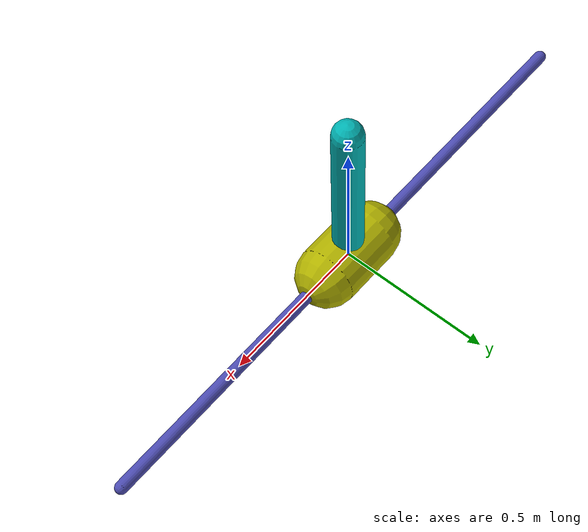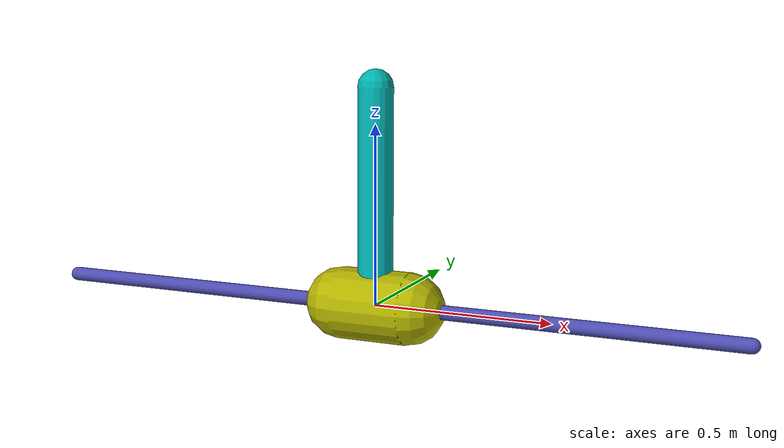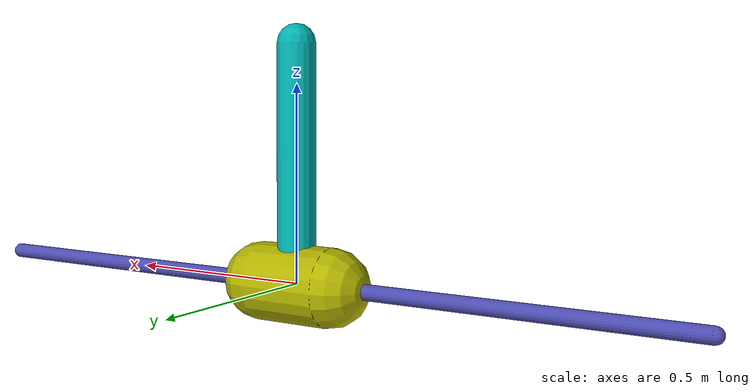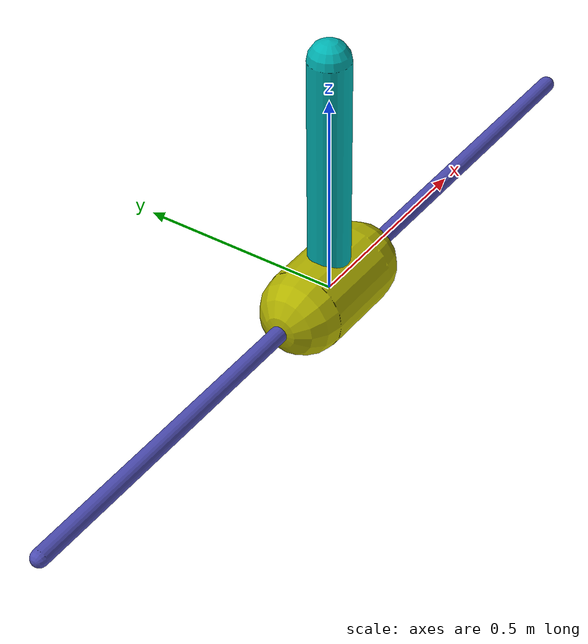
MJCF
<mujoco model="inverted pendulum">
	<compiler inertiafromgeom="true"/>
	<default>
		<joint armature="0" damping="1" limited="true"/>
		<geom contype="0" friction="1 0.1 0.1" rgba="0.7 0.7 0 1"/>
		<tendon/>
		<motor ctrlrange="-3 3"/>
	</default>
	<option gravity="0 0 -9.81" integrator="RK4" timestep="0.02"/>
	<size nstack="3000"/>
	<worldbody>
		<!--geom name="ground" type="plane" pos="0 0 0" /-->
		<geom name="rail" pos="0 0 0" quat="0.707 0 0.707 0" rgba="0.3 0.3 0.7 1" size="0.02 1" type="capsule"/>
		<body name="cart" pos="0 0 0">
			<joint axis="1 0 0" limited="true" name="slider" pos="0 0 0" range="-1 1" type="slide"/>
			<geom name="cart" pos="0 0 0" quat="0.707 0 0.707 0" size="0.1 0.1" type="capsule"/>
			<body name="pole" pos="0 0 0">
				<joint axis="0 1 0" name="hinge" pos="0 0 0" range="-90 90" type="hinge"/>
				<geom fromto="0 0 0 0.001 0 0.6" name="cpole" rgba="0 0.7 0.7 1" size="0.049 0.3" type="capsule"/>
                <!--debug-->
                <site name="target0" pos="0.001 0.0 0.6" size="0.001 0.001 0.001" rgba="1 0 1 1" type="sphere"></site>
				<site name="target1" pos="0.3 0.3 0.6" size="0.01 0.01 0.01" rgba="0 0 0 0" type="sphere"></site>
			</body>
		</body>
	</worldbody>
	<!--debug-->
	<tendon>
		<spatial limited="false" range="0 0.6" width="0.005" rgba="1 0 0 0" name="tendon_force">
			<site site="target0"></site>
			<site site="target1"></site>
		</spatial>
	</tendon>
	<actuator>
		<motor gear="100" joint="slider" name="slide"/>
	</actuator>
</mujoco>
